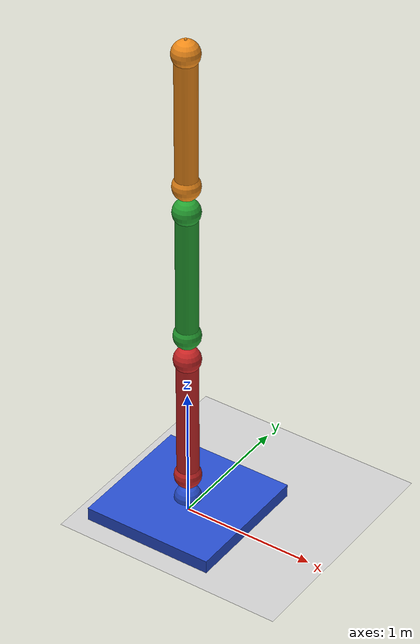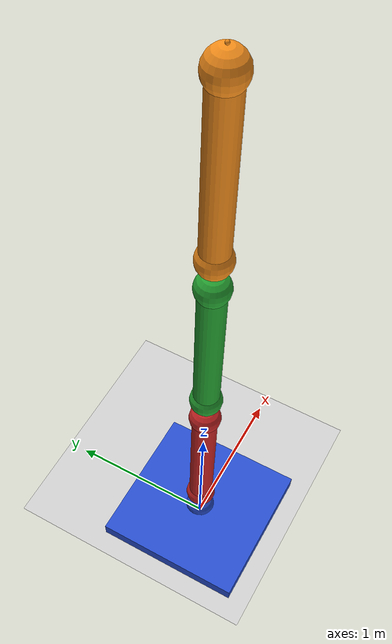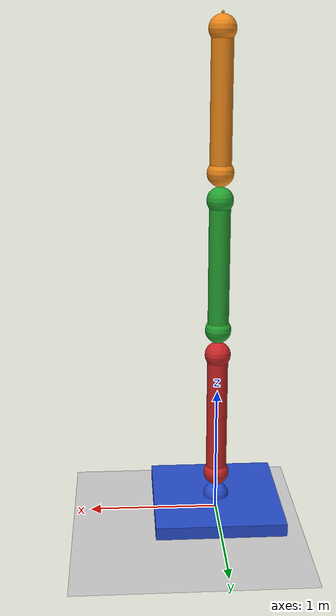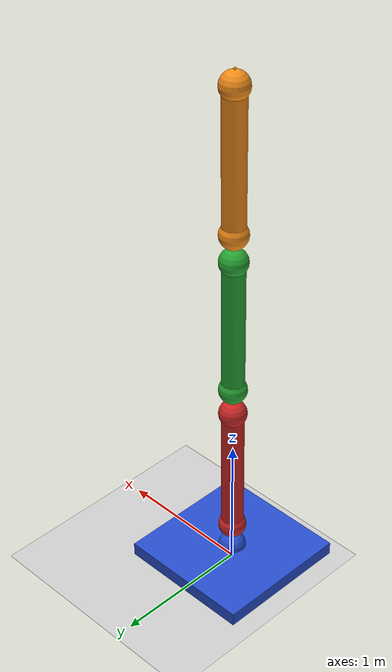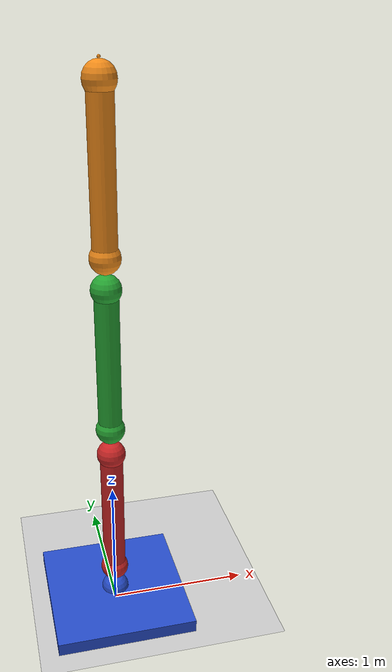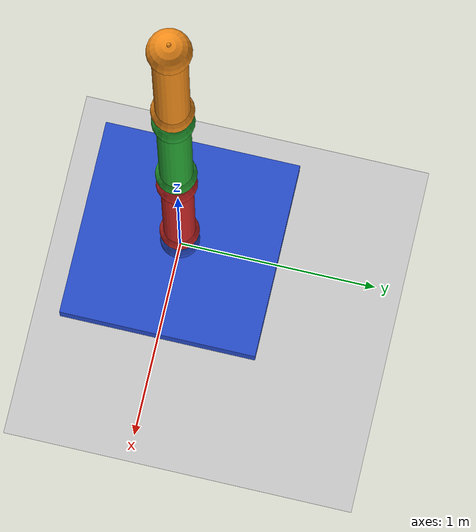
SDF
<?xml version="1.0" ?>
<sdf version="1.6">
  <world name="default">
    <include>
      <uri>model://ground_plane</uri>
    </include>

    <include>
      <uri>model://sun</uri>
    </include>

    <!-- reference to your plugin -->
    <plugin name="gazebo_tutorials" filename="libhello_world_plugin.so"/>

    <model name="6dof_arm">
      <pose>0 0 0.85 0 0 0</pose>
      <include>
       <uri>model://6dof_arm</uri>
      </include>

      <!-- Attach the plugin to this model -->
      <plugin name="6dof_arm_controller" filename="libhello_arm_plugin.so">
      </plugin>
    </model>

  </world>
</sdf>
